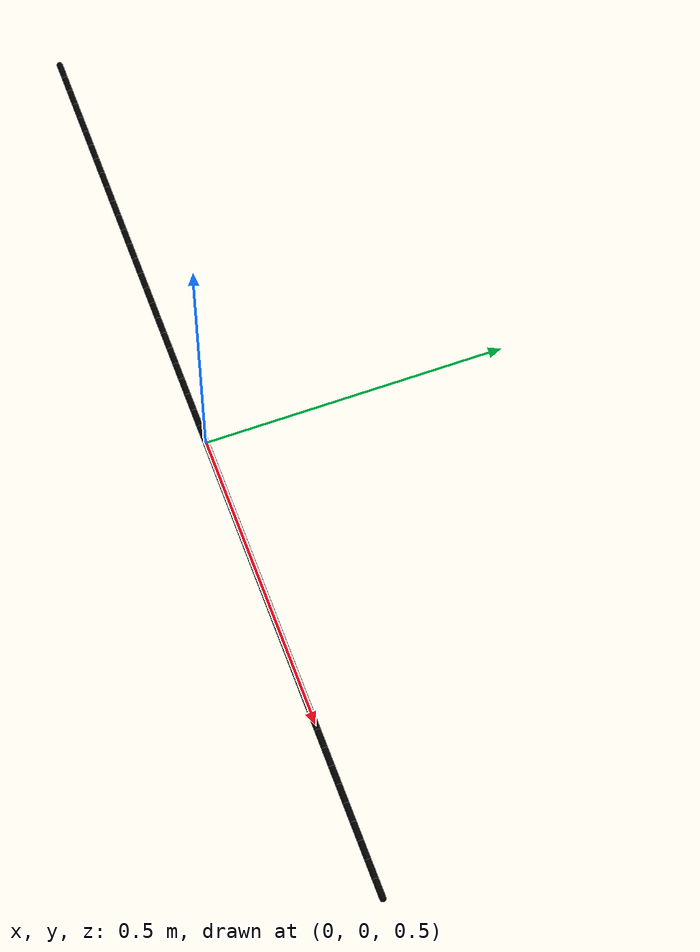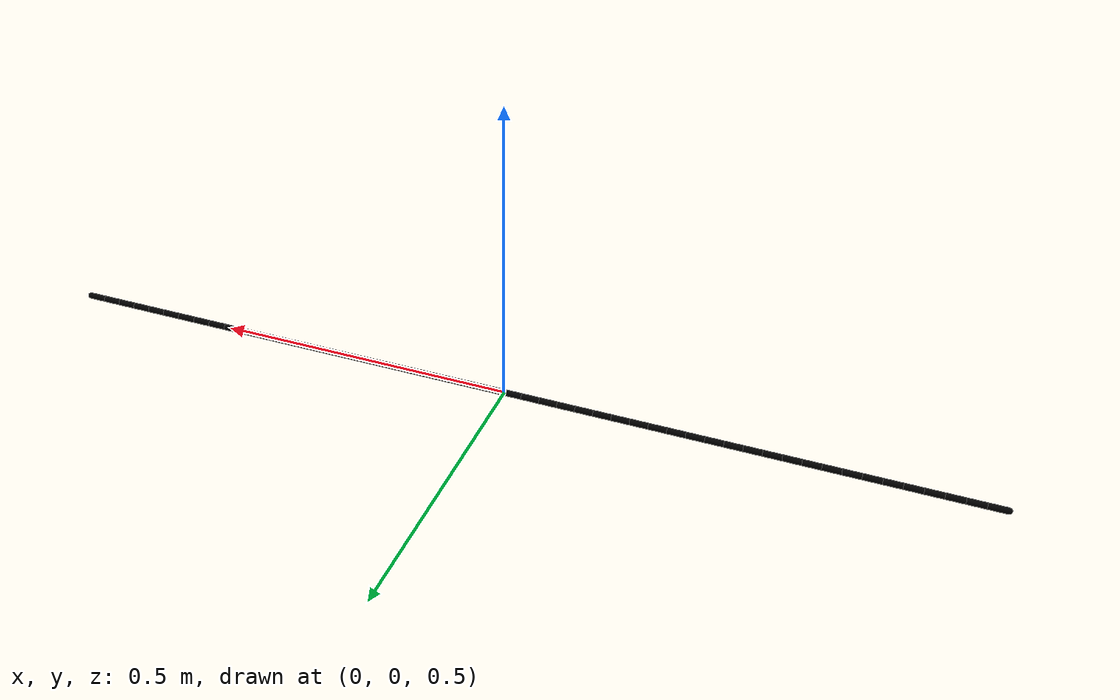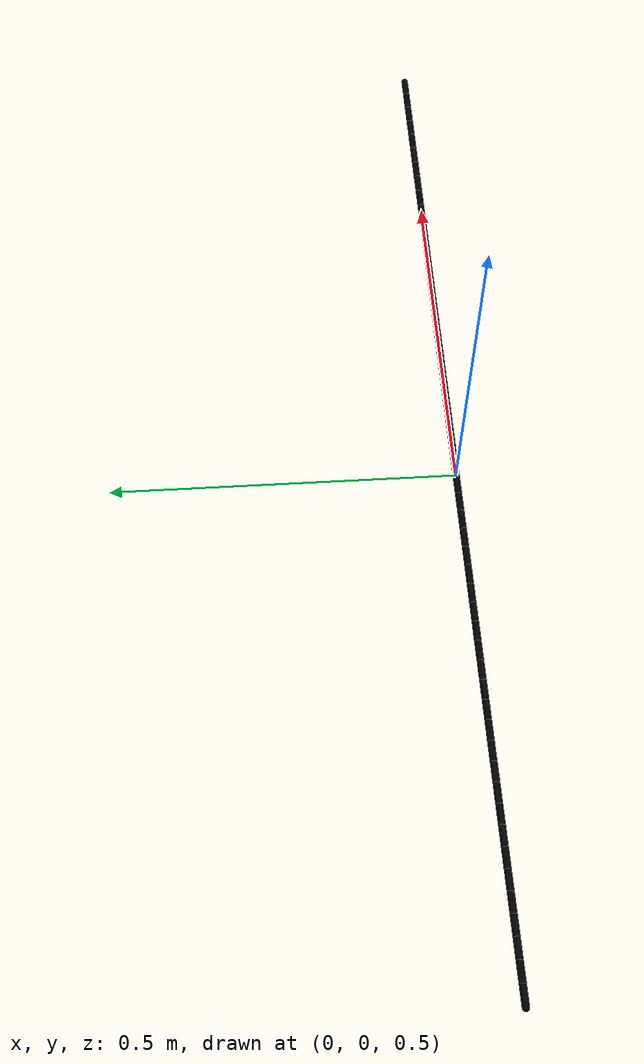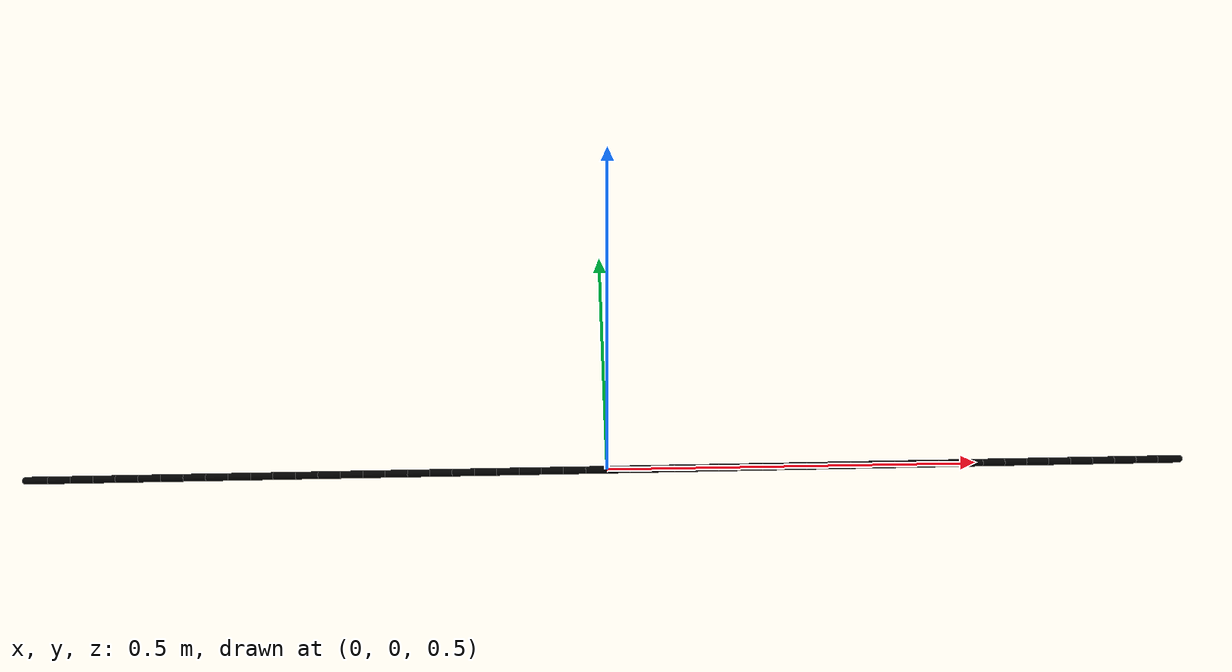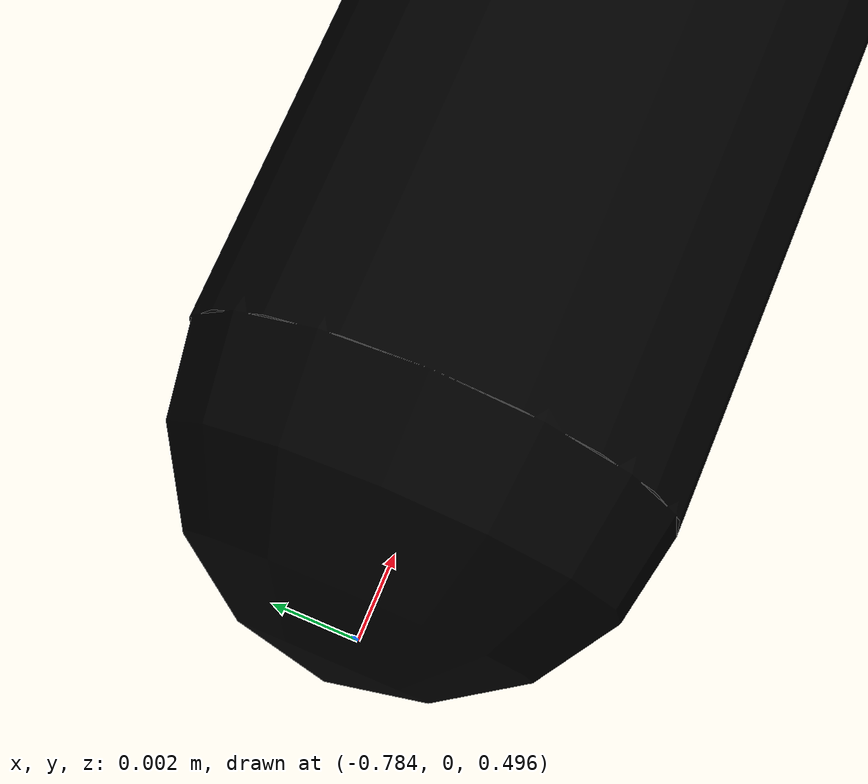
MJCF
<mujoco model="stiff-rope">
  <worldbody>
    <body name="stiffrope" pos="0.78 0.0 0.5" quat="0.0 0.0 1.0 0.0">
      <site name="ft_rope" pos="0 0 0" size="0.005 0.005 0.005" rgba="1 0 0 0" type="sphere" group="1" />
      <body name="B_first">
        <site name="S_first" pos="0 0 0" size="0.0045000000000000005"/>
        <geom name="G0" pos="0.015000000000000001 0 0" quat="0.707107 0 -0.707107 0" type="capsule" size="0.0050 0.0150" rgba="0.0 0.0 0.0 1.0" mass="0.0008154362416107383" conaffinity="1" contype="1" solref="0.001 1" condim="1"/>
        <site name="S_0" pos="0 0 0" size="0.0045000000000000005" rgba="0 0 0 0"/>
        <site name="twistcylx_1" pos="0 0 0.05" quat="0.707 0 0 -0.707" size="0.001 0.05" rgba="0 0 1 0.0" type="cylinder" group="1" />
        <site name="twistcyly_1" pos="0 0.05 0" quat="0.707 -0.707 0 0" size="0.001 0.05" rgba="1 1 0 0.0" type="cylinder" group="1" />
        <body name="B_1" pos="0.030000000000000002 0 0">
          <joint name="J_1" type="ball" pos="0 0 0" stiffness="0.0" damping="0.01" actuatorfrclimited="false"/>
          <geom name="G1" pos="0.015000000000000001 0 0" quat="0.707107 0 -0.707107 0" type="capsule" size="0.0050 0.0150" rgba="0.0 0.0 0.0 1.0" mass="0.0008154362416107383" conaffinity="1" contype="1" solref="0.001 1" condim="1"/>
          <site name="S_1" pos="0 0 0" size="0.0045000000000000005" rgba="0 0 0 0"/>
          <body name="B_2" pos="0.030000000000000002 0 0">
            <joint name="J_2" type="ball" pos="0 0 0" stiffness="0.0" damping="0.01" actuatorfrclimited="false"/>
            <geom name="G2" pos="0.015000000000000001 0 0" quat="0.707107 0 -0.707107 0" type="capsule" size="0.0050 0.0150" rgba="0.0 0.0 0.0 1.0" mass="0.0008154362416107383" conaffinity="1" contype="1" solref="0.001 1" condim="1"/>
            <site name="S_2" pos="0 0 0" size="0.0045000000000000005" rgba="0 0 0 0"/>
            <body name="B_3" pos="0.030000000000000002 0 0">
              <joint name="J_3" type="ball" pos="0 0 0" stiffness="0.0" damping="0.01" actuatorfrclimited="false"/>
              <geom name="G3" pos="0.015000000000000001 0 0" quat="0.707107 0 -0.707107 0" type="capsule" size="0.0050 0.0150" rgba="0.0 0.0 0.0 1.0" mass="0.0008154362416107383" conaffinity="1" contype="1" solref="0.001 1" condim="1"/>
              <site name="S_3" pos="0 0 0" size="0.0045000000000000005" rgba="0 0 0 0"/>
              <body name="B_4" pos="0.030000000000000002 0 0">
                <joint name="J_4" type="ball" pos="0 0 0" stiffness="0.0" damping="0.01" actuatorfrclimited="false"/>
                <geom name="G4" pos="0.015000000000000001 0 0" quat="0.707107 0 -0.707107 0" type="capsule" size="0.0050 0.0150" rgba="0.0 0.0 0.0 1.0" mass="0.0008154362416107383" conaffinity="1" contype="1" solref="0.001 1" condim="1"/>
                <site name="S_4" pos="0 0 0" size="0.0045000000000000005" rgba="0 0 0 0"/>
                <body name="B_5" pos="0.030000000000000002 0 0">
                  <joint name="J_5" type="ball" pos="0 0 0" stiffness="0.0" damping="0.01" actuatorfrclimited="false"/>
                  <geom name="G5" pos="0.015000000000000001 0 0" quat="0.707107 0 -0.707107 0" type="capsule" size="0.0050 0.0150" rgba="0.0 0.0 0.0 1.0" mass="0.0008154362416107383" conaffinity="1" contype="1" solref="0.001 1" condim="1"/>
                  <site name="S_5" pos="0 0 0" size="0.0045000000000000005" rgba="0 0 0 0"/>
                  <body name="B_6" pos="0.030000000000000002 0 0">
                    <joint name="J_6" type="ball" pos="0 0 0" stiffness="0.0" damping="0.01" actuatorfrclimited="false"/>
                    <geom name="G6" pos="0.015000000000000001 0 0" quat="0.707107 0 -0.707107 0" type="capsule" size="0.0050 0.0150" rgba="0.0 0.0 0.0 1.0" mass="0.0008154362416107383" conaffinity="1" contype="1" solref="0.001 1" condim="1"/>
                    <site name="S_6" pos="0 0 0" size="0.0045000000000000005" rgba="0 0 0 0"/>
                    <body name="B_7" pos="0.030000000000000002 0 0">
                      <joint name="J_7" type="ball" pos="0 0 0" stiffness="0.0" damping="0.01" actuatorfrclimited="false"/>
                      <geom name="G7" pos="0.015000000000000001 0 0" quat="0.707107 0 -0.707107 0" type="capsule" size="0.0050 0.0150" rgba="0.0 0.0 0.0 1.0" mass="0.0008154362416107383" conaffinity="1" contype="1" solref="0.001 1" condim="1"/>
                      <site name="S_7" pos="0 0 0" size="0.0045000000000000005" rgba="0 0 0 0"/>
                      <body name="B_8" pos="0.030000000000000002 0 0">
                        <joint name="J_8" type="ball" pos="0 0 0" stiffness="0.0" damping="0.01" actuatorfrclimited="false"/>
                        <geom name="G8" pos="0.015000000000000001 0 0" quat="0.707107 0 -0.707107 0" type="capsule" size="0.0050 0.0150" rgba="0.0 0.0 0.0 1.0" mass="0.0008154362416107383" conaffinity="1" contype="1" solref="0.001 1" condim="1"/>
                        <site name="S_8" pos="0 0 0" size="0.0045000000000000005" rgba="0 0 0 0"/>
                        <body name="B_9" pos="0.030000000000000002 0 0">
                          <joint name="J_9" type="ball" pos="0 0 0" stiffness="0.0" damping="0.01" actuatorfrclimited="false"/>
                          <geom name="G9" pos="0.015000000000000001 0 0" quat="0.707107 0 -0.707107 0" type="capsule" size="0.0050 0.0150" rgba="0.0 0.0 0.0 1.0" mass="0.0008154362416107383" conaffinity="1" contype="1" solref="0.001 1" condim="1"/>
                          <site name="S_9" pos="0 0 0" size="0.0045000000000000005" rgba="0 0 0 0"/>
                          <body name="B_10" pos="0.030000000000000002 0 0">
                            <joint name="J_10" type="ball" pos="0 0 0" stiffness="0.0" damping="0.01" actuatorfrclimited="false"/>
                            <geom name="G10" pos="0.015000000000000001 0 0" quat="0.707107 0 -0.707107 0" type="capsule" size="0.0050 0.0150" rgba="0.0 0.0 0.0 1.0" mass="0.0008154362416107383" conaffinity="1" contype="1" solref="0.001 1" condim="1"/>
                            <site name="S_10" pos="0 0 0" size="0.0045000000000000005" rgba="0 0 0 0"/>
                            <body name="B_11" pos="0.030000000000000002 0 0">
                              <joint name="J_11" type="ball" pos="0 0 0" stiffness="0.0" damping="0.01" actuatorfrclimited="false"/>
                              <geom name="G11" pos="0.015000000000000001 0 0" quat="0.707107 0 -0.707107 0" type="capsule" size="0.0050 0.0150" rgba="0.0 0.0 0.0 1.0" mass="0.0008154362416107383" conaffinity="1" contype="1" solref="0.001 1" condim="1"/>
                              <site name="S_11" pos="0 0 0" size="0.0045000000000000005" rgba="0 0 0 0"/>
                              <body name="B_12" pos="0.030000000000000002 0 0">
                                <joint name="J_12" type="ball" pos="0 0 0" stiffness="0.0" damping="0.01" actuatorfrclimited="false"/>
                                <geom name="G12" pos="0.015000000000000001 0 0" quat="0.707107 0 -0.707107 0" type="capsule" size="0.0050 0.0150" rgba="0.0 0.0 0.0 1.0" mass="0.0008154362416107383" conaffinity="1" contype="1" solref="0.001 1" condim="1"/>
                                <site name="S_12" pos="0 0 0" size="0.0045000000000000005" rgba="0 0 0 0"/>
                                <body name="B_13" pos="0.030000000000000002 0 0">
                                  <joint name="J_13" type="ball" pos="0 0 0" stiffness="0.0" damping="0.01" actuatorfrclimited="false"/>
                                  <geom name="G13" pos="0.015000000000000001 0 0" quat="0.707107 0 -0.707107 0" type="capsule" size="0.0050 0.0150" rgba="0.0 0.0 0.0 1.0" mass="0.0008154362416107383" conaffinity="1" contype="1" solref="0.001 1" condim="1"/>
                                  <site name="S_13" pos="0 0 0" size="0.0045000000000000005" rgba="0 0 0 0"/>
                                  <body name="B_14" pos="0.030000000000000002 0 0">
                                    <joint name="J_14" type="ball" pos="0 0 0" stiffness="0.0" damping="0.01" actuatorfrclimited="false"/>
                                    <geom name="G14" pos="0.015000000000000001 0 0" quat="0.707107 0 -0.707107 0" type="capsule" size="0.0050 0.0150" rgba="0.0 0.0 0.0 1.0" mass="0.0008154362416107383" conaffinity="1" contype="1" solref="0.001 1" condim="1"/>
                                    <site name="S_14" pos="0 0 0" size="0.0045000000000000005" rgba="0 0 0 0"/>
                                    <body name="B_15" pos="0.030000000000000002 0 0">
                                      <joint name="J_15" type="ball" pos="0 0 0" stiffness="0.0" damping="0.01" actuatorfrclimited="false"/>
                                      <geom name="G15" pos="0.015000000000000001 0 0" quat="0.707107 0 -0.707107 0" type="capsule" size="0.0050 0.0150" rgba="0.0 0.0 0.0 1.0" mass="0.0008154362416107383" conaffinity="1" contype="1" solref="0.001 1" condim="1"/>
                                      <site name="S_15" pos="0 0 0" size="0.0045000000000000005" rgba="0 0 0 0"/>
                                      <body name="B_16" pos="0.030000000000000002 0 0">
                                        <joint name="J_16" type="ball" pos="0 0 0" stiffness="0.0" damping="0.01" actuatorfrclimited="false"/>
                                        <geom name="G16" pos="0.015000000000000001 0 0" quat="0.707107 0 -0.707107 0" type="capsule" size="0.0050 0.0150" rgba="0.0 0.0 0.0 1.0" mass="0.0008154362416107383" conaffinity="1" contype="1" solref="0.001 1" condim="1"/>
                                        <site name="S_16" pos="0 0 0" size="0.0045000000000000005" rgba="0 0 0 0"/>
                                        <body name="B_17" pos="0.030000000000000002 0 0">
                                          <joint name="J_17" type="ball" pos="0 0 0" stiffness="0.0" damping="0.01" actuatorfrclimited="false"/>
                                          <geom name="G17" pos="0.015000000000000001 0 0" quat="0.707107 0 -0.707107 0" type="capsule" size="0.0050 0.0150" rgba="0.0 0.0 0.0 1.0" mass="0.0008154362416107383" conaffinity="1" contype="1" solref="0.001 1" condim="1"/>
                                          <site name="S_17" pos="0 0 0" size="0.0045000000000000005" rgba="0 0 0 0"/>
                                          <body name="B_18" pos="0.030000000000000002 0 0">
                                            <joint name="J_18" type="ball" pos="0 0 0" stiffness="0.0" damping="0.01" actuatorfrclimited="false"/>
                                            <geom name="G18" pos="0.015000000000000001 0 0" quat="0.707107 0 -0.707107 0" type="capsule" size="0.0050 0.0150" rgba="0.0 0.0 0.0 1.0" mass="0.0008154362416107383" conaffinity="1" contype="1" solref="0.001 1" condim="1"/>
                                            <site name="S_18" pos="0 0 0" size="0.0045000000000000005" rgba="0 0 0 0"/>
                                            <body name="B_19" pos="0.030000000000000002 0 0">
                                              <joint name="J_19" type="ball" pos="0 0 0" stiffness="0.0" damping="0.01" actuatorfrclimited="false"/>
                                              <geom name="G19" pos="0.015000000000000001 0 0" quat="0.707107 0 -0.707107 0" type="capsule" size="0.0050 0.0150" rgba="0.0 0.0 0.0 1.0" mass="0.0008154362416107383" conaffinity="1" contype="1" solref="0.001 1" condim="1"/>
                                              <site name="S_19" pos="0 0 0" size="0.0045000000000000005" rgba="0 0 0 0"/>
                                              <body name="B_20" pos="0.030000000000000002 0 0">
                                                <joint name="J_20" type="ball" pos="0 0 0" stiffness="0.0" damping="0.01" actuatorfrclimited="false"/>
                                                <geom name="G20" pos="0.015000000000000001 0 0" quat="0.707107 0 -0.707107 0" type="capsule" size="0.0050 0.0150" rgba="0.0 0.0 0.0 1.0" mass="0.0008154362416107383" conaffinity="1" contype="1" solref="0.001 1" condim="1"/>
                                                <site name="S_20" pos="0 0 0" size="0.0045000000000000005" rgba="0 0 0 0"/>
                                                <body name="B_21" pos="0.030000000000000002 0 0">
                                                  <joint name="J_21" type="ball" pos="0 0 0" stiffness="0.0" damping="0.01" actuatorfrclimited="false"/>
                                                  <geom name="G21" pos="0.015000000000000001 0 0" quat="0.707107 0 -0.707107 0" type="capsule" size="0.0050 0.0150" rgba="0.0 0.0 0.0 1.0" mass="0.0008154362416107383" conaffinity="1" contype="1" solref="0.001 1" condim="1"/>
                                                  <site name="S_21" pos="0 0 0" size="0.0045000000000000005" rgba="0 0 0 0"/>
                                                  <body name="B_22" pos="0.030000000000000002 0 0">
                                                    <joint name="J_22" type="ball" pos="0 0 0" stiffness="0.0" damping="0.01" actuatorfrclimited="false"/>
                                                    <geom name="G22" pos="0.015000000000000001 0 0" quat="0.707107 0 -0.707107 0" type="capsule" size="0.0050 0.0150" rgba="0.0 0.0 0.0 1.0" mass="0.0008154362416107383" conaffinity="1" contype="1" solref="0.001 1" condim="1"/>
                                                    <site name="S_22" pos="0 0 0" size="0.0045000000000000005" rgba="0 0 0 0"/>
                                                    <body name="B_23" pos="0.030000000000000002 0 0">
                                                      <joint name="J_23" type="ball" pos="0 0 0" stiffness="0.0" damping="0.01" actuatorfrclimited="false"/>
                                                      <geom name="G23" pos="0.015000000000000001 0 0" quat="0.707107 0 -0.707107 0" type="capsule" size="0.0050 0.0150" rgba="0.0 0.0 0.0 1.0" mass="0.0008154362416107383" conaffinity="1" contype="1" solref="0.001 1" condim="1"/>
                                                      <site name="S_23" pos="0 0 0" size="0.0045000000000000005" rgba="0 0 0 0"/>
                                                      <body name="B_24" pos="0.030000000000000002 0 0">
                                                        <joint name="J_24" type="ball" pos="0 0 0" stiffness="0.0" damping="0.01" actuatorfrclimited="false"/>
                                                        <geom name="G24" pos="0.015000000000000001 0 0" quat="0.707107 0 -0.707107 0" type="capsule" size="0.0050 0.0150" rgba="0.0 0.0 0.0 1.0" mass="0.0008154362416107383" conaffinity="1" contype="1" solref="0.001 1" condim="1"/>
                                                        <site name="S_24" pos="0 0 0" size="0.0045000000000000005" rgba="0 0 0 0"/>
                                                        <body name="B_25" pos="0.030000000000000002 0 0">
                                                          <joint name="J_25" type="ball" pos="0 0 0" stiffness="0.0" damping="0.01" actuatorfrclimited="false"/>
                                                          <geom name="G25" pos="0.015000000000000001 0 0" quat="0.707107 0 -0.707107 0" type="capsule" size="0.0050 0.0150" rgba="0.0 0.0 0.0 1.0" mass="0.0008154362416107383" conaffinity="1" contype="1" solref="0.001 1" condim="1"/>
                                                          <site name="S_25" pos="0 0 0" size="0.0045000000000000005" rgba="0 0 0 0"/>
                                                          <body name="B_26" pos="0.030000000000000002 0 0">
                                                            <joint name="J_26" type="ball" pos="0 0 0" stiffness="0.0" damping="0.01" actuatorfrclimited="false"/>
                                                            <geom name="G26" pos="0.015000000000000001 0 0" quat="0.707107 0 -0.707107 0" type="capsule" size="0.0050 0.0150" rgba="0.0 0.0 0.0 1.0" mass="0.0008154362416107383" conaffinity="1" contype="1" solref="0.001 1" condim="1"/>
                                                            <site name="S_26" pos="0 0 0" size="0.0045000000000000005" rgba="0 0 0 0"/>
                                                            <site name="twistcylx_27" pos="0 0 0.05" quat="0.707 0 0 -0.707" size="0.001 0.05" rgba="0 0 1 0.0" type="cylinder" group="1" />
                                                            <site name="twistcyly_27" pos="0 0.05 0" quat="0.707 -0.707 0 0" size="0.001 0.05" rgba="1 1 0 0.0" type="cylinder" group="1" />
                                                            <body name="B_27" pos="0.030000000000000002 0 0">
                                                              <joint name="J_27" type="ball" pos="0 0 0" stiffness="0.0" damping="0.01" actuatorfrclimited="false"/>
                                                              <geom name="G27" pos="0.015000000000000001 0 0" quat="0.707107 0 -0.707107 0" type="capsule" size="0.0050 0.0150" rgba="0.0 0.0 0.0 1.0" mass="0.0008154362416107383" conaffinity="1" contype="1" solref="0.001 1" condim="1"/>
                                                              <site name="S_27" pos="0 0 0" size="0.0045000000000000005" rgba="0 0 0 0"/>
                                                              <body name="B_28" pos="0.030000000000000002 0 0">
                                                                <joint name="J_28" type="ball" pos="0 0 0" stiffness="0.0" damping="0.01" actuatorfrclimited="false"/>
                                                                <geom name="G28" pos="0.015000000000000001 0 0" quat="0.707107 0 -0.707107 0" type="capsule" size="0.0050 0.0150" rgba="0.0 0.0 0.0 1.0" mass="0.0008154362416107383" conaffinity="1" contype="1" solref="0.001 1" condim="1"/>
                                                                <site name="S_28" pos="0 0 0" size="0.0045000000000000005" rgba="0 0 0 0"/>
                                                                <body name="B_29" pos="0.030000000000000002 0 0">
                                                                  <joint name="J_29" type="ball" pos="0 0 0" stiffness="0.0" damping="0.01" actuatorfrclimited="false"/>
                                                                  <geom name="G29" pos="0.015000000000000001 0 0" quat="0.707107 0 -0.707107 0" type="capsule" size="0.0050 0.0150" rgba="0.0 0.0 0.0 1.0" mass="0.0008154362416107383" conaffinity="1" contype="1" solref="0.001 1" condim="1"/>
                                                                  <site name="S_29" pos="0 0 0" size="0.0045000000000000005" rgba="0 0 0 0"/>
                                                                  <body name="B_30" pos="0.030000000000000002 0 0">
                                                                    <joint name="J_30" type="ball" pos="0 0 0" stiffness="0.0" damping="0.01" actuatorfrclimited="false"/>
                                                                    <geom name="G30" pos="0.015000000000000001 0 0" quat="0.707107 0 -0.707107 0" type="capsule" size="0.0050 0.0150" rgba="0.0 0.0 0.0 1.0" mass="0.0008154362416107383" conaffinity="1" contype="1" solref="0.001 1" condim="1"/>
                                                                    <site name="S_30" pos="0 0 0" size="0.0045000000000000005" rgba="0 0 0 0"/>
                                                                    <body name="B_31" pos="0.030000000000000002 0 0">
                                                                      <joint name="J_31" type="ball" pos="0 0 0" stiffness="0.0" damping="0.01" actuatorfrclimited="false"/>
                                                                      <geom name="G31" pos="0.015000000000000001 0 0" quat="0.707107 0 -0.707107 0" type="capsule" size="0.0050 0.0150" rgba="0.0 0.0 0.0 1.0" mass="0.0008154362416107383" conaffinity="1" contype="1" solref="0.001 1" condim="1"/>
                                                                      <site name="S_31" pos="0 0 0" size="0.0045000000000000005" rgba="0 0 0 0"/>
                                                                      <body name="B_32" pos="0.030000000000000002 0 0">
                                                                        <joint name="J_32" type="ball" pos="0 0 0" stiffness="0.0" damping="0.01" actuatorfrclimited="false"/>
                                                                        <geom name="G32" pos="0.015000000000000001 0 0" quat="0.707107 0 -0.707107 0" type="capsule" size="0.0050 0.0150" rgba="0.0 0.0 0.0 1.0" mass="0.0008154362416107383" conaffinity="1" contype="1" solref="0.001 1" condim="1"/>
                                                                        <site name="S_32" pos="0 0 0" size="0.0045000000000000005" rgba="0 0 0 0"/>
                                                                        <body name="B_33" pos="0.030000000000000002 0 0">
                                                                          <joint name="J_33" type="ball" pos="0 0 0" stiffness="0.0" damping="0.01" actuatorfrclimited="false"/>
                                                                          <geom name="G33" pos="0.015000000000000001 0 0" quat="0.707107 0 -0.707107 0" type="capsule" size="0.0050 0.0150" rgba="0.0 0.0 0.0 1.0" mass="0.0008154362416107383" conaffinity="1" contype="1" solref="0.001 1" condim="1"/>
                                                                          <site name="S_33" pos="0 0 0" size="0.0045000000000000005" rgba="0 0 0 0"/>
                                                                          <body name="B_34" pos="0.030000000000000002 0 0">
                                                                            <joint name="J_34" type="ball" pos="0 0 0" stiffness="0.0" damping="0.01" actuatorfrclimited="false"/>
                                                                            <geom name="G34" pos="0.015000000000000001 0 0" quat="0.707107 0 -0.707107 0" type="capsule" size="0.0050 0.0150" rgba="0.0 0.0 0.0 1.0" mass="0.0008154362416107383" conaffinity="1" contype="1" solref="0.001 1" condim="1"/>
                                                                            <site name="S_34" pos="0 0 0" size="0.0045000000000000005" rgba="0 0 0 0"/>
                                                                            <body name="B_35" pos="0.030000000000000002 0 0">
                                                                              <joint name="J_35" type="ball" pos="0 0 0" stiffness="0.0" damping="0.01" actuatorfrclimited="false"/>
                                                                              <geom name="G35" pos="0.015000000000000001 0 0" quat="0.707107 0 -0.707107 0" type="capsule" size="0.0050 0.0150" rgba="0.0 0.0 0.0 1.0" mass="0.0008154362416107383" conaffinity="1" contype="1" solref="0.001 1" condim="1"/>
                                                                              <site name="S_35" pos="0 0 0" size="0.0045000000000000005" rgba="0 0 0 0"/>
                                                                              <body name="B_36" pos="0.030000000000000002 0 0">
                                                                                <joint name="J_36" type="ball" pos="0 0 0" stiffness="0.0" damping="0.01" actuatorfrclimited="false"/>
                                                                                <geom name="G36" pos="0.015000000000000001 0 0" quat="0.707107 0 -0.707107 0" type="capsule" size="0.0050 0.0150" rgba="0.0 0.0 0.0 1.0" mass="0.0008154362416107383" conaffinity="1" contype="1" solref="0.001 1" condim="1"/>
                                                                                <site name="S_36" pos="0 0 0" size="0.0045000000000000005" rgba="0 0 0 0"/>
                                                                                <body name="B_37" pos="0.030000000000000002 0 0">
                                                                                  <joint name="J_37" type="ball" pos="0 0 0" stiffness="0.0" damping="0.01" actuatorfrclimited="false"/>
                                                                                  <geom name="G37" pos="0.015000000000000001 0 0" quat="0.707107 0 -0.707107 0" type="capsule" size="0.0050 0.0150" rgba="0.0 0.0 0.0 1.0" mass="0.0008154362416107383" conaffinity="1" contype="1" solref="0.001 1" condim="1"/>
                                                                                  <site name="S_37" pos="0 0 0" size="0.0045000000000000005" rgba="0 0 0 0"/>
                                                                                  <body name="B_38" pos="0.030000000000000002 0 0">
                                                                                    <joint name="J_38" type="ball" pos="0 0 0" stiffness="0.0" damping="0.01" actuatorfrclimited="false"/>
                                                                                    <geom name="G38" pos="0.015000000000000001 0 0" quat="0.707107 0 -0.707107 0" type="capsule" size="0.0050 0.0150" rgba="0.0 0.0 0.0 1.0" mass="0.0008154362416107383" conaffinity="1" contype="1" solref="0.001 1" condim="1"/>
                                                                                    <site name="S_38" pos="0 0 0" size="0.0045000000000000005" rgba="0 0 0 0"/>
                                                                                    <body name="B_39" pos="0.030000000000000002 0 0">
                                                                                      <joint name="J_39" type="ball" pos="0 0 0" stiffness="0.0" damping="0.01" actuatorfrclimited="false"/>
                                                                                      <geom name="G39" pos="0.015000000000000001 0 0" quat="0.707107 0 -0.707107 0" type="capsule" size="0.0050 0.0150" rgba="0.0 0.0 0.0 1.0" mass="0.0008154362416107383" conaffinity="1" contype="1" solref="0.001 1" condim="1"/>
                                                                                      <site name="S_39" pos="0 0 0" size="0.0045000000000000005" rgba="0 0 0 0"/>
                                                                                      <body name="B_40" pos="0.030000000000000002 0 0">
                                                                                        <joint name="J_40" type="ball" pos="0 0 0" stiffness="0.0" damping="0.01" actuatorfrclimited="false"/>
                                                                                        <geom name="G40" pos="0.015000000000000001 0 0" quat="0.707107 0 -0.707107 0" type="capsule" size="0.0050 0.0150" rgba="0.0 0.0 0.0 1.0" mass="0.0008154362416107383" conaffinity="1" contype="1" solref="0.001 1" condim="1"/>
                                                                                        <site name="S_40" pos="0 0 0" size="0.0045000000000000005" rgba="0 0 0 0"/>
                                                                                        <body name="B_41" pos="0.030000000000000002 0 0">
                                                                                          <joint name="J_41" type="ball" pos="0 0 0" stiffness="0.0" damping="0.01" actuatorfrclimited="false"/>
                                                                                          <geom name="G41" pos="0.015000000000000001 0 0" quat="0.707107 0 -0.707107 0" type="capsule" size="0.0050 0.0150" rgba="0.0 0.0 0.0 1.0" mass="0.0008154362416107383" conaffinity="1" contype="1" solref="0.001 1" condim="1"/>
                                                                                          <site name="S_41" pos="0 0 0" size="0.0045000000000000005" rgba="0 0 0 0"/>
                                                                                          <body name="B_42" pos="0.030000000000000002 0 0">
                                                                                            <joint name="J_42" type="ball" pos="0 0 0" stiffness="0.0" damping="0.01" actuatorfrclimited="false"/>
                                                                                            <geom name="G42" pos="0.015000000000000001 0 0" quat="0.707107 0 -0.707107 0" type="capsule" size="0.0050 0.0150" rgba="0.0 0.0 0.0 1.0" mass="0.0008154362416107383" conaffinity="1" contype="1" solref="0.001 1" condim="1"/>
                                                                                            <site name="S_42" pos="0 0 0" size="0.0045000000000000005" rgba="0 0 0 0"/>
                                                                                            <body name="B_43" pos="0.030000000000000002 0 0">
                                                                                              <joint name="J_43" type="ball" pos="0 0 0" stiffness="0.0" damping="0.01" actuatorfrclimited="false"/>
                                                                                              <geom name="G43" pos="0.015000000000000001 0 0" quat="0.707107 0 -0.707107 0" type="capsule" size="0.0050 0.0150" rgba="0.0 0.0 0.0 1.0" mass="0.0008154362416107383" conaffinity="1" contype="1" solref="0.001 1" condim="1"/>
                                                                                              <site name="S_43" pos="0 0 0" size="0.0045000000000000005" rgba="0 0 0 0"/>
                                                                                              <body name="B_44" pos="0.030000000000000002 0 0">
                                                                                                <joint name="J_44" type="ball" pos="0 0 0" stiffness="0.0" damping="0.01" actuatorfrclimited="false"/>
                                                                                                <geom name="G44" pos="0.015000000000000001 0 0" quat="0.707107 0 -0.707107 0" type="capsule" size="0.0050 0.0150" rgba="0.0 0.0 0.0 1.0" mass="0.0008154362416107383" conaffinity="1" contype="1" solref="0.001 1" condim="1"/>
                                                                                                <site name="S_44" pos="0 0 0" size="0.0045000000000000005" rgba="0 0 0 0"/>
                                                                                                <body name="B_45" pos="0.030000000000000002 0 0">
                                                                                                  <joint name="J_45" type="ball" pos="0 0 0" stiffness="0.0" damping="0.01" actuatorfrclimited="false"/>
                                                                                                  <geom name="G45" pos="0.015000000000000001 0 0" quat="0.707107 0 -0.707107 0" type="capsule" size="0.0050 0.0150" rgba="0.0 0.0 0.0 1.0" mass="0.0008154362416107383" conaffinity="1" contype="1" solref="0.001 1" condim="1"/>
                                                                                                  <site name="S_45" pos="0 0 0" size="0.0045000000000000005" rgba="0 0 0 0"/>
                                                                                                  <body name="B_46" pos="0.030000000000000002 0 0">
                                                                                                    <joint name="J_46" type="ball" pos="0 0 0" stiffness="0.0" damping="0.01" actuatorfrclimited="false"/>
                                                                                                    <geom name="G46" pos="0.015000000000000001 0 0" quat="0.707107 0 -0.707107 0" type="capsule" size="0.0050 0.0150" rgba="0.0 0.0 0.0 1.0" mass="0.0008154362416107383" conaffinity="1" contype="1" solref="0.001 1" condim="1"/>
                                                                                                    <site name="S_46" pos="0 0 0" size="0.0045000000000000005" rgba="0 0 0 0"/>
                                                                                                    <body name="B_47" pos="0.030000000000000002 0 0">
                                                                                                      <joint name="J_47" type="ball" pos="0 0 0" stiffness="0.0" damping="0.01" actuatorfrclimited="false"/>
                                                                                                      <geom name="G47" pos="0.015000000000000001 0 0" quat="0.707107 0 -0.707107 0" type="capsule" size="0.0050 0.0150" rgba="0.0 0.0 0.0 1.0" mass="0.0008154362416107383" conaffinity="1" contype="1" solref="0.001 1" condim="1"/>
                                                                                                      <site name="S_47" pos="0 0 0" size="0.0045000000000000005" rgba="0 0 0 0"/>
                                                                                                      <body name="B_48" pos="0.030000000000000002 0 0">
                                                                                                        <joint name="J_48" type="ball" pos="0 0 0" stiffness="0.0" damping="0.01" actuatorfrclimited="false"/>
                                                                                                        <geom name="G48" pos="0.015000000000000001 0 0" quat="0.707107 0 -0.707107 0" type="capsule" size="0.0050 0.0150" rgba="0.0 0.0 0.0 1.0" mass="0.0008154362416107383" conaffinity="1" contype="1" solref="0.001 1" condim="1"/>
                                                                                                        <site name="S_48" pos="0 0 0" size="0.0045000000000000005" rgba="0 0 0 0"/>
                                                                                                        <body name="B_49" pos="0.030000000000000002 0 0">
                                                                                                          <joint name="J_49" type="ball" pos="0 0 0" stiffness="0.0" damping="0.01" actuatorfrclimited="false"/>
                                                                                                          <geom name="G49" pos="0.015000000000000001 0 0" quat="0.707107 0 -0.707107 0" type="capsule" size="0.0050 0.0150" rgba="0.0 0.0 0.0 1.0" mass="0.0008154362416107383" conaffinity="1" contype="1" solref="0.001 1" condim="1"/>
                                                                                                          <site name="S_49" pos="0 0 0" size="0.0045000000000000005" rgba="0 0 0 0"/>
                                                                                                          <body name="B_50" pos="0.030000000000000002 0 0">
                                                                                                            <joint name="J_50" type="ball" pos="0 0 0" stiffness="0.0" damping="0.01" actuatorfrclimited="false"/>
                                                                                                            <geom name="G50" pos="0.015000000000000001 0 0" quat="0.707107 0 -0.707107 0" type="capsule" size="0.0050 0.0150" rgba="0.0 0.0 0.0 1.0" mass="0.0008154362416107383" conaffinity="1" contype="1" solref="0.001 1" condim="1"/>
                                                                                                            <site name="S_50" pos="0 0 0" size="0.0045000000000000005" rgba="0 0 0 0"/>
                                                                                                            <body name="B_last" pos="0.030000000000000002 0 0">
                                                                                                              <joint name="J_last" type="ball" pos="0 0 0" stiffness="0.0" damping="0.01" actuatorfrclimited="false"/>
                                                                                                              <geom name="G51" pos="0.015000000000000001 0 0" quat="0.707107 0 -0.707107 0" type="capsule" size="0.0050 0.0150" rgba="0.0 0.0 0.0 1.0" mass="0.0008154362416107383" conaffinity="1" contype="1" solref="0.001 1" condim="1"/>
                                                                                                              <site name="S_51" pos="0 0 0" size="0.0045000000000000005" rgba="0 0 0 0"/>
                                                                                                              <site name="twistcylx_52" pos="0 0 0.05" quat="0.707 0 0 -0.707" size="0.001 0.05" rgba="0 0 1 0.0" type="cylinder" group="1" />
                                                                                                              <site name="twistcyly_52" pos="0 0.05 0" quat="0.707 -0.707 0 0" size="0.001 0.05" rgba="1 1 0 0.0" type="cylinder" group="1" />
                                                                                                              <site name="S_last" pos="0.030000000000000002 0 0" size="0.0045000000000000005"/>
                                                                                                              <body name="B_last2" pos="0.030000000000000002 0 0">
                                                                                                              </body>
                                                                                                            </body>
                                                                                                          </body>
                                                                                                        </body>
                                                                                                      </body>
                                                                                                    </body>
                                                                                                  </body>
                                                                                                </body>
                                                                                              </body>
                                                                                            </body>
                                                                                          </body>
                                                                                        </body>
                                                                                      </body>
                                                                                    </body>
                                                                                  </body>
                                                                                </body>
                                                                              </body>
                                                                            </body>
                                                                          </body>
                                                                        </body>
                                                                      </body>
                                                                    </body>
                                                                  </body>
                                                                </body>
                                                              </body>
                                                            </body>
                                                          </body>
                                                        </body>
                                                      </body>
                                                    </body>
                                                  </body>
                                                </body>
                                              </body>
                                            </body>
                                          </body>
                                        </body>
                                      </body>
                                    </body>
                                  </body>
                                </body>
                              </body>
                            </body>
                          </body>
                        </body>
                      </body>
                    </body>
                  </body>
                </body>
              </body>
            </body>
          </body>
        </body>
      </body>
    </body>
  </worldbody>
  <sensor>
  </sensor>
  <equality>
    <weld body1='B_last' body2='eef_body' solref='0.001 1'/>
  </equality>
  <contact>
    <exclude body1="B_first" body2="B_1"/>
    <exclude body1="B_first" body2="B_last"/>
    <exclude body1="B_1" body2="B_last"/>
    <exclude body1="B_first" body2="B_50"/>
    <exclude body1="eef_body" body2="B_first"/>
    <exclude body1="eef_body" body2="B_last"/>
    <exclude body1="eef_body" body2="B_50"/>
  </contact>
</mujoco>
